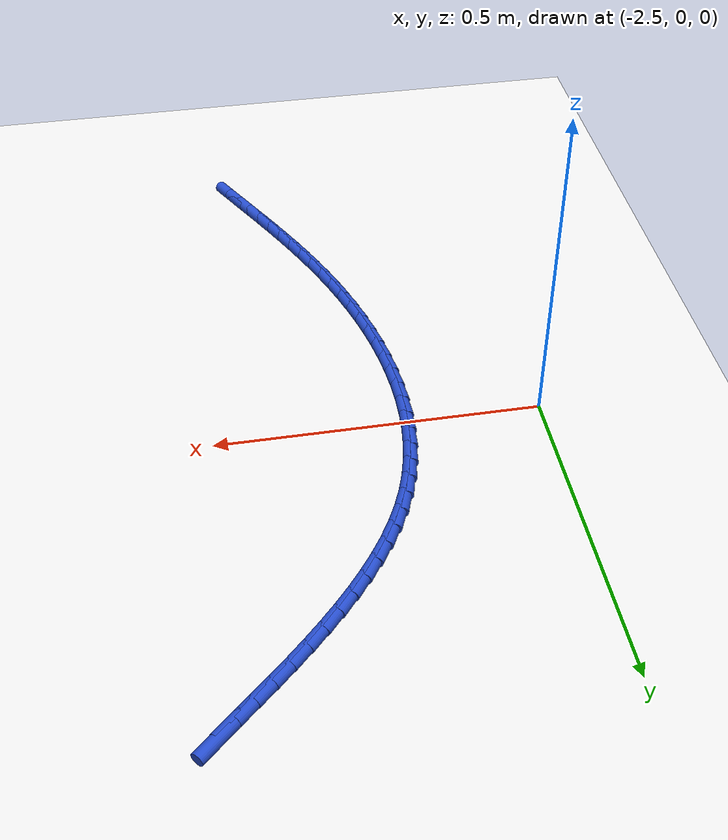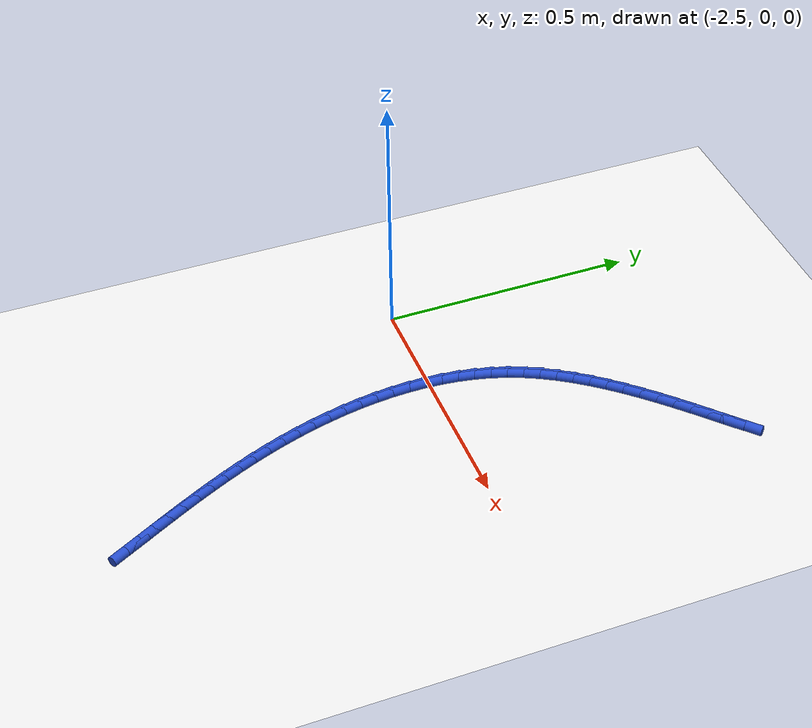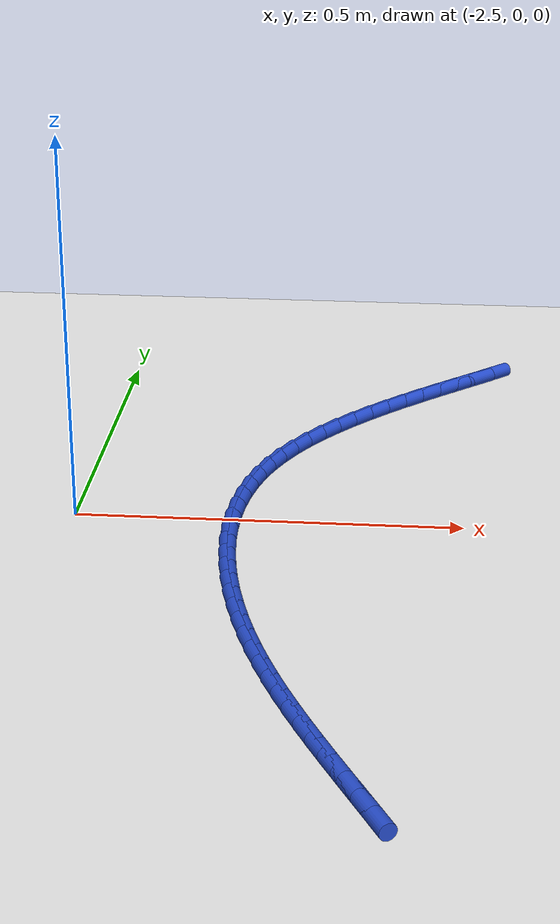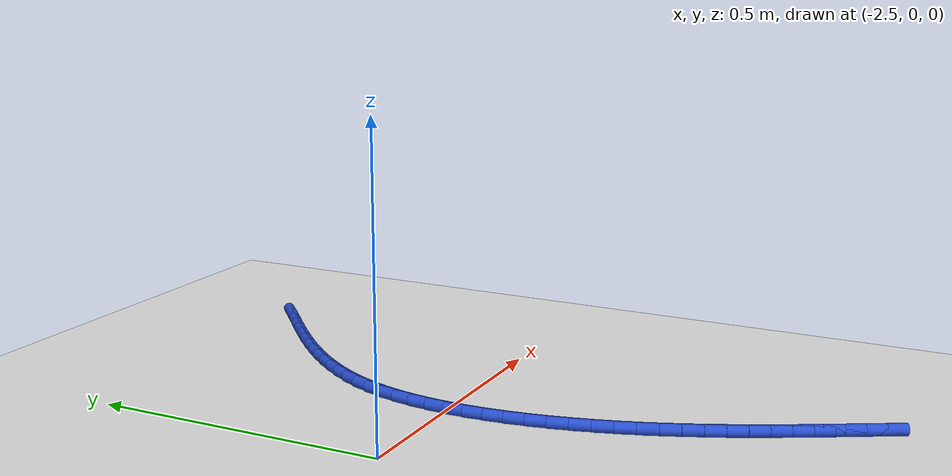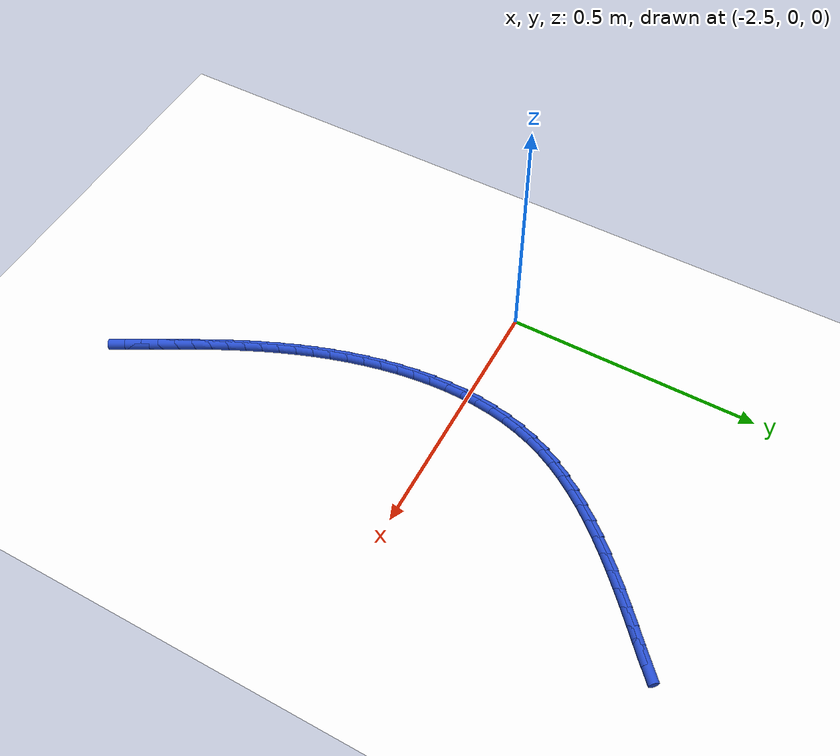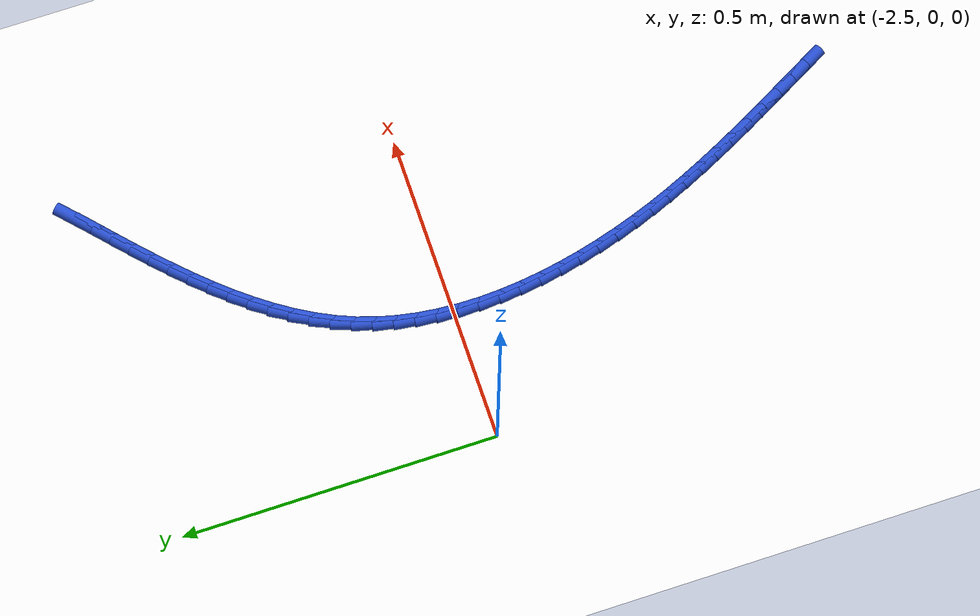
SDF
<sdf version="1.6">
 <world name="default">
  <model name="ground_plane">
   <static>1</static>
   <link name="link">
    <collision name="collision">
     <geometry><plane><normal>0 0 1</normal><size>100 100</size></plane></geometry>
     <surface><friction><ode><mu>100</mu><mu2>50</mu2></ode></friction></surface>
    </collision>
    <visual name="visual">
     <cast_shadows>0</cast_shadows>
     <geometry><plane><normal>0 0 1</normal><size>100 100</size></plane></geometry>
     <material>
      <script><uri>file://media/materials/scripts/gazebo.material</uri><name>Gazebo/WhiteGlow</name></script>
     </material>
    </visual>
   </link>
  </model>
  <model name="line">
   <link name="link_99">
    <pose>-1.9712170960711295 0.498593724339204 0.01 0 1.57 0.7433523687855094</pose>
    <collision name="collision">
     <geometry><cylinder><radius>0.01</radius><length>0.08</length></cylinder></geometry>
    </collision>
    <visual name="visual">
     <material>
      <script><name>Gazebo/Blue</name><uri>file://media/materials/scripts/gazebo.material</uri></script>
     </material>
     <geometry><cylinder><radius>0.01</radius><length>0.08</length></cylinder></geometry>
    </visual>
   </link>
   <link name="link_100">
    <pose>-1.9955050096753475 0.4762669194008407 0.01 0 1.57 0.7305749980280456</pose>
    <collision name="collision">
     <geometry><cylinder><radius>0.01</radius><length>0.08</length></cylinder></geometry>
    </collision>
    <visual name="visual">
     <material>
      <script><name>Gazebo/Blue</name><uri>file://media/materials/scripts/gazebo.material</uri></script>
     </material>
     <geometry><cylinder><radius>0.01</radius><length>0.08</length></cylinder></geometry>
    </visual>
   </link>
   <link name="link_101">
    <pose>-2.0203080441297785 0.4540445522976957 0.01 0 1.57 0.7376762493371514</pose>
    <collision name="collision">
     <geometry><cylinder><radius>0.01</radius><length>0.08</length></cylinder></geometry>
    </collision>
    <visual name="visual">
     <material>
      <script><name>Gazebo/Blue</name><uri>file://media/materials/scripts/gazebo.material</uri></script>
     </material>
     <geometry><cylinder><radius>0.01</radius><length>0.08</length></cylinder></geometry>
    </visual>
   </link>
   <link name="link_102">
    <pose>-2.0451204169456725 0.4314941396358713 0.01 0 1.57 0.7503446328507397</pose>
    <collision name="collision">
     <geometry><cylinder><radius>0.01</radius><length>0.08</length></cylinder></geometry>
    </collision>
    <visual name="visual">
     <material>
      <script><name>Gazebo/Blue</name><uri>file://media/materials/scripts/gazebo.material</uri></script>
     </material>
     <geometry><cylinder><radius>0.01</radius><length>0.08</length></cylinder></geometry>
    </visual>
   </link>
   <link name="link_103">
    <pose>-2.069734183310226 0.4085481923146449 0.01 0 1.57 0.7677650868058837</pose>
    <collision name="collision">
     <geometry><cylinder><radius>0.01</radius><length>0.08</length></cylinder></geometry>
    </collision>
    <visual name="visual">
     <material>
      <script><name>Gazebo/Blue</name><uri>file://media/materials/scripts/gazebo.material</uri></script>
     </material>
     <geometry><cylinder><radius>0.01</radius><length>0.08</length></cylinder></geometry>
    </visual>
   </link>
   <link name="link_104">
    <pose>-2.0939599961547426 0.3851620124078592 0.01 0 1.57 0.7900824711013407</pose>
    <collision name="collision">
     <geometry><cylinder><radius>0.01</radius><length>0.08</length></cylinder></geometry>
    </collision>
    <visual name="visual">
     <material>
      <script><name>Gazebo/Blue</name><uri>file://media/materials/scripts/gazebo.material</uri></script>
     </material>
     <geometry><cylinder><radius>0.01</radius><length>0.08</length></cylinder></geometry>
    </visual>
   </link>
   <link name="link_105">
    <pose>-2.1176085084105245 0.3612909019893579 0.01 0 1.57 0.8175104420003065</pose>
    <collision name="collision">
     <geometry><cylinder><radius>0.01</radius><length>0.08</length></cylinder></geometry>
    </collision>
    <visual name="visual">
     <material>
      <script><name>Gazebo/Blue</name><uri>file://media/materials/scripts/gazebo.material</uri></script>
     </material>
     <geometry><cylinder><radius>0.01</radius><length>0.08</length></cylinder></geometry>
    </visual>
   </link>
   <link name="link_106">
    <pose>-2.1404903730088765 0.3368901631329838 0.01 0 1.57 0.8503203261023627</pose>
    <collision name="collision">
     <geometry><cylinder><radius>0.01</radius><length>0.08</length></cylinder></geometry>
    </collision>
    <visual name="visual">
     <material>
      <script><name>Gazebo/Blue</name><uri>file://media/materials/scripts/gazebo.material</uri></script>
     </material>
     <geometry><cylinder><radius>0.01</radius><length>0.08</length></cylinder></geometry>
    </visual>
   </link>
   <link name="link_107">
    <pose>-2.1624162428811022 0.31191509791258026 0.01 0 1.57 0.8888251167248972</pose>
    <collision name="collision">
     <geometry><cylinder><radius>0.01</radius><length>0.08</length></cylinder></geometry>
    </collision>
    <visual name="visual">
     <material>
      <script><name>Gazebo/Blue</name><uri>file://media/materials/scripts/gazebo.material</uri></script>
     </material>
     <geometry><cylinder><radius>0.01</radius><length>0.08</length></cylinder></geometry>
    </visual>
   </link>
   <link name="link_108">
    <pose>-2.183196770958507 0.28632100840199015 0.01 0 1.57 0.9333555331846022</pose>
    <collision name="collision">
     <geometry><cylinder><radius>0.01</radius><length>0.08</length></cylinder></geometry>
    </collision>
    <visual name="visual">
     <material>
      <script><name>Gazebo/Blue</name><uri>file://media/materials/scripts/gazebo.material</uri></script>
     </material>
     <geometry><cylinder><radius>0.01</radius><length>0.08</length></cylinder></geometry>
    </visual>
   </link>
   <link name="link_109">
    <pose>-2.2026426101723913 0.260063196675057 0.01 0 1.57 0.984224685090006</pose>
    <collision name="collision">
     <geometry><cylinder><radius>0.01</radius><length>0.08</length></cylinder></geometry>
    </collision>
    <visual name="visual">
     <material>
      <script><name>Gazebo/Blue</name><uri>file://media/materials/scripts/gazebo.material</uri></script>
     </material>
     <geometry><cylinder><radius>0.01</radius><length>0.08</length></cylinder></geometry>
    </visual>
   </link>
   <link name="link_110">
    <pose>-2.220564413454061 0.2330969648056238 0.01 0 1.57 1.0416781597416251</pose>
    <collision name="collision">
     <geometry><cylinder><radius>0.01</radius><length>0.08</length></cylinder></geometry>
    </collision>
    <visual name="visual">
     <material>
      <script><name>Gazebo/Blue</name><uri>file://media/materials/scripts/gazebo.material</uri></script>
     </material>
     <geometry><cylinder><radius>0.01</radius><length>0.08</length></cylinder></geometry>
    </visual>
   </link>
   <link name="link_111">
    <pose>-2.2367728337348187 0.2053776148675336 0.01 0 1.57 1.1058280785248629</pose>
    <collision name="collision">
     <geometry><cylinder><radius>0.01</radius><length>0.08</length></cylinder></geometry>
    </collision>
    <visual name="visual">
     <material>
      <script><name>Gazebo/Blue</name><uri>file://media/materials/scripts/gazebo.material</uri></script>
     </material>
     <geometry><cylinder><radius>0.01</radius><length>0.08</length></cylinder></geometry>
    </visual>
   </link>
   <link name="link_112">
    <pose>-2.2510785239459685 0.17686044893462918 0.01 0 1.57 1.1765684320870826</pose>
    <collision name="collision">
     <geometry><cylinder><radius>0.01</radius><length>0.08</length></cylinder></geometry>
    </collision>
    <visual name="visual">
     <material>
      <script><name>Gazebo/Blue</name><uri>file://media/materials/scripts/gazebo.material</uri></script>
     </material>
     <geometry><cylinder><radius>0.01</radius><length>0.08</length></cylinder></geometry>
    </visual>
   </link>
   <link name="link_113">
    <pose>-2.263292289338381 0.14750084634135827 0.01 0 1.57 1.2510449465603104</pose>
    <collision name="collision">
     <geometry><cylinder><radius>0.01</radius><length>0.08</length></cylinder></geometry>
    </collision>
    <visual name="visual">
     <material>
      <script><name>Gazebo/Blue</name><uri>file://media/materials/scripts/gazebo.material</uri></script>
     </material>
     <geometry><cylinder><radius>0.01</radius><length>0.08</length></cylinder></geometry>
    </visual>
   </link>
   <link name="link_114">
    <pose>-2.273295513335017 0.11728998557972527 0.01 0 1.57 1.3224177623903886</pose>
    <collision name="collision">
     <geometry><cylinder><radius>0.01</radius><length>0.08</length></cylinder></geometry>
    </collision>
    <visual name="visual">
     <material>
      <script><name>Gazebo/Blue</name><uri>file://media/materials/scripts/gazebo.material</uri></script>
     </material>
     <geometry><cylinder><radius>0.01</radius><length>0.08</length></cylinder></geometry>
    </visual>
   </link>
   <link name="link_115">
    <pose>-2.281152104698836 0.08631162693029133 0.01 0 1.57 1.389446849622222</pose>
    <collision name="collision">
     <geometry><cylinder><radius>0.01</radius><length>0.08</length></cylinder></geometry>
    </collision>
    <visual name="visual">
     <material>
      <script><name>Gazebo/Blue</name><uri>file://media/materials/scripts/gazebo.material</uri></script>
     </material>
     <geometry><cylinder><radius>0.01</radius><length>0.08</length></cylinder></geometry>
    </visual>
   </link>
   <link name="link_116">
    <pose>-2.2869550865665262 0.05466429827132497 0.01 0 1.57 1.452093772004705</pose>
    <collision name="collision">
     <geometry><cylinder><radius>0.01</radius><length>0.08</length></cylinder></geometry>
    </collision>
    <visual name="visual">
     <material>
      <script><name>Gazebo/Blue</name><uri>file://media/materials/scripts/gazebo.material</uri></script>
     </material>
     <geometry><cylinder><radius>0.01</radius><length>0.08</length></cylinder></geometry>
    </visual>
   </link>
   <link name="link_117">
    <pose>-2.290797482074777 0.02244652748109369 0.01 0 1.57 1.5104581768428684</pose>
    <collision name="collision">
     <geometry><cylinder><radius>0.01</radius><length>0.08</length></cylinder></geometry>
    </collision>
    <visual name="visual">
     <material>
      <script><name>Gazebo/Blue</name><uri>file://media/materials/scripts/gazebo.material</uri></script>
     </material>
     <geometry><cylinder><radius>0.01</radius><length>0.08</length></cylinder></geometry>
    </visual>
   </link>
   <link name="link_118">
    <pose>-2.292772314360275 -0.010243157562134769 0.01 0 1.57 1.564738518466892</pose>
    <collision name="collision">
     <geometry><cylinder><radius>0.01</radius><length>0.08</length></cylinder></geometry>
    </collision>
    <visual name="visual">
     <material>
      <script><name>Gazebo/Blue</name><uri>file://media/materials/scripts/gazebo.material</uri></script>
     </material>
     <geometry><cylinder><radius>0.01</radius><length>0.08</length></cylinder></geometry>
    </visual>
   </link>
   <link name="link_119">
    <pose>-2.29297260655971 -0.04330622898009308 0.01 0 1.57 -1.526394913108153</pose>
    <collision name="collision">
     <geometry><cylinder><radius>0.01</radius><length>0.08</length></cylinder></geometry>
    </collision>
    <visual name="visual">
     <material>
      <script><name>Gazebo/Blue</name><uri>file://media/materials/scripts/gazebo.material</uri></script>
     </material>
     <geometry><cylinder><radius>0.01</radius><length>0.08</length></cylinder></geometry>
    </visual>
   </link>
   <link name="link_120">
    <pose>-2.2914913818097684 -0.0766441588945126 0.01 0 1.57 -1.479456790551005</pose>
    <collision name="collision">
     <geometry><cylinder><radius>0.01</radius><length>0.08</length></cylinder></geometry>
    </collision>
    <visual name="visual">
     <material>
      <script><name>Gazebo/Blue</name><uri>file://media/materials/scripts/gazebo.material</uri></script>
     </material>
     <geometry><cylinder><radius>0.01</radius><length>0.08</length></cylinder></geometry>
    </visual>
   </link>
   <link name="link_121">
    <pose>-2.2884216632471386 -0.11015841942712597 0.01 0 1.57 -1.4357229997104057</pose>
    <collision name="collision">
     <geometry><cylinder><radius>0.01</radius><length>0.08</length></cylinder></geometry>
    </collision>
    <visual name="visual">
     <material>
      <script><name>Gazebo/Blue</name><uri>file://media/materials/scripts/gazebo.material</uri></script>
     </material>
     <geometry><cylinder><radius>0.01</radius><length>0.08</length></cylinder></geometry>
    </visual>
   </link>
   <link name="link_122">
    <pose>-2.283856474008508 -0.14375048269966534 0.01 0 1.57 -1.3948740583595893</pose>
    <collision name="collision">
     <geometry><cylinder><radius>0.01</radius><length>0.08</length></cylinder></geometry>
    </collision>
    <visual name="visual">
     <material>
      <script><name>Gazebo/Blue</name><uri>file://media/materials/scripts/gazebo.material</uri></script>
     </material>
     <geometry><cylinder><radius>0.01</radius><length>0.08</length></cylinder></geometry>
    </visual>
   </link>
   <link name="link_123">
    <pose>-2.277888837230567 -0.17732182083386305 0.01 0 1.57 -1.3565966709175556</pose>
    <collision name="collision">
     <geometry><cylinder><radius>0.01</radius><length>0.08</length></cylinder></geometry>
    </collision>
    <visual name="visual">
     <material>
      <script><name>Gazebo/Blue</name><uri>file://media/materials/scripts/gazebo.material</uri></script>
     </material>
     <geometry><cylinder><radius>0.01</radius><length>0.08</length></cylinder></geometry>
    </visual>
   </link>
   <link name="link_124">
    <pose>-2.2706117760500018 -0.2107739059514513 0.01 0 1.57 -1.320588679218133</pose>
    <collision name="collision">
     <geometry><cylinder><radius>0.01</radius><length>0.08</length></cylinder></geometry>
    </collision>
    <visual name="visual">
     <material>
      <script><name>Gazebo/Blue</name><uri>file://media/materials/scripts/gazebo.material</uri></script>
     </material>
     <geometry><cylinder><radius>0.01</radius><length>0.08</length></cylinder></geometry>
    </visual>
   </link>
   <link name="link_125">
    <pose>-2.2621183136035006 -0.2440082101741631 0.01 0 1.57 -1.286561084157032</pose>
    <collision name="collision">
     <geometry><cylinder><radius>0.01</radius><length>0.08</length></cylinder></geometry>
    </collision>
    <visual name="visual">
     <material>
      <script><name>Gazebo/Blue</name><uri>file://media/materials/scripts/gazebo.material</uri></script>
     </material>
     <geometry><cylinder><radius>0.01</radius><length>0.08</length></cylinder></geometry>
    </visual>
   </link>
   <link name="link_126">
    <pose>-2.2525014730277517 -0.27692620562372894 0.01 0 1.57 -1.254237935180598</pose>
    <collision name="collision">
     <geometry><cylinder><radius>0.01</radius><length>0.08</length></cylinder></geometry>
    </collision>
    <visual name="visual">
     <material>
      <script><name>Gazebo/Blue</name><uri>file://media/materials/scripts/gazebo.material</uri></script>
     </material>
     <geometry><cylinder><radius>0.01</radius><length>0.08</length></cylinder></geometry>
    </visual>
   </link>
   <link name="link_127">
    <pose>-2.241854277459443 -0.309429364421882 0.01 0 1.57 -1.2233696527693905</pose>
    <collision name="collision">
     <geometry><cylinder><radius>0.01</radius><length>0.08</length></cylinder></geometry>
    </collision>
    <visual name="visual">
     <material>
      <script><name>Gazebo/Blue</name><uri>file://media/materials/scripts/gazebo.material</uri></script>
     </material>
     <geometry><cylinder><radius>0.01</radius><length>0.08</length></cylinder></geometry>
    </visual>
   </link>
   <link name="link_128">
    <pose>-2.230269832591724 -0.3414204291687358 0.01 0 1.57 -1.1944120074125684</pose>
    <collision name="collision">
     <geometry><cylinder><radius>0.01</radius><length>0.08</length></cylinder></geometry>
    </collision>
    <visual name="visual">
     <material>
      <script><name>Gazebo/Blue</name><uri>file://media/materials/scripts/gazebo.material</uri></script>
     </material>
     <geometry><cylinder><radius>0.01</radius><length>0.08</length></cylinder></geometry>
    </visual>
   </link>
   <link name="link_129">
    <pose>-2.217844874532303 -0.3728580116615057 0.01 0 1.57 -1.1682939314446188</pose>
    <collision name="collision">
     <geometry><cylinder><radius>0.01</radius><length>0.08</length></cylinder></geometry>
    </collision>
    <visual name="visual">
     <material>
      <script><name>Gazebo/Blue</name><uri>file://media/materials/scripts/gazebo.material</uri></script>
     </material>
     <geometry><cylinder><radius>0.01</radius><length>0.08</length></cylinder></geometry>
    </visual>
   </link>
   <link name="link_130">
    <pose>-2.204681114575773 -0.40377728787270617 0.01 0 1.57 -1.1451667660521245</pose>
    <collision name="collision">
     <geometry><cylinder><radius>0.01</radius><length>0.08</length></cylinder></geometry>
    </collision>
    <visual name="visual">
     <material>
      <script><name>Gazebo/Blue</name><uri>file://media/materials/scripts/gazebo.material</uri></script>
     </material>
     <geometry><cylinder><radius>0.01</radius><length>0.08</length></cylinder></geometry>
    </visual>
   </link>
   <link name="link_131">
    <pose>-2.190880623927546 -0.4342189725165499 0.01 0 1.57 -1.1250970454972327</pose>
    <collision name="collision">
     <geometry><cylinder><radius>0.01</radius><length>0.08</length></cylinder></geometry>
    </collision>
    <visual name="visual">
     <material>
      <script><name>Gazebo/Blue</name><uri>file://media/materials/scripts/gazebo.material</uri></script>
     </material>
     <geometry><cylinder><radius>0.01</radius><length>0.08</length></cylinder></geometry>
    </visual>
   </link>
   <link name="link_132">
    <pose>-2.1765454737930336 -0.46422378030725003 0.01 0 1.57 -1.1081376853922564</pose>
    <collision name="collision">
     <geometry><cylinder><radius>0.01</radius><length>0.08</length></cylinder></geometry>
    </collision>
    <visual name="visual">
     <material>
      <script><name>Gazebo/Blue</name><uri>file://media/materials/scripts/gazebo.material</uri></script>
     </material>
     <geometry><cylinder><radius>0.01</radius><length>0.08</length></cylinder></geometry>
    </visual>
   </link>
   <link name="link_133">
    <pose>-2.161777735377648 -0.4938324259590172 0.01 0 1.57 -1.0943334800479956</pose>
    <collision name="collision">
     <geometry><cylinder><radius>0.01</radius><length>0.08</length></cylinder></geometry>
    </collision>
    <visual name="visual">
     <material>
      <script><name>Gazebo/Blue</name><uri>file://media/materials/scripts/gazebo.material</uri></script>
     </material>
     <geometry><cylinder><radius>0.01</radius><length>0.08</length></cylinder></geometry>
    </visual>
   </link>
   <link name="link_134">
    <pose>-2.1466794798868025 -0.523085624186065 0.01 0 1.57 -1.0837260607355863</pose>
    <collision name="collision">
     <geometry><cylinder><radius>0.01</radius><length>0.08</length></cylinder></geometry>
    </collision>
    <visual name="visual">
     <material>
      <script><name>Gazebo/Blue</name><uri>file://media/materials/scripts/gazebo.material</uri></script>
     </material>
     <geometry><cylinder><radius>0.01</radius><length>0.08</length></cylinder></geometry>
    </visual>
   </link>
   <link name="link_135">
    <pose>-2.131352778525908 -0.5520240897026054 0.01 0 1.57 -1.0763581795357413</pose>
    <collision name="collision">
     <geometry><cylinder><radius>0.01</radius><length>0.08</length></cylinder></geometry>
    </collision>
    <visual name="visual">
     <material>
      <script><name>Gazebo/Blue</name><uri>file://media/materials/scripts/gazebo.material</uri></script>
     </material>
     <geometry><cylinder><radius>0.01</radius><length>0.08</length></cylinder></geometry>
    </visual>
   </link>
   <link name="link_136">
    <pose>-2.115899702500378 -0.5806885372228515 0.01 0 1.57 -1.072277231691672</pose>
    <collision name="collision">
     <geometry><cylinder><radius>0.01</radius><length>0.08</length></cylinder></geometry>
    </collision>
    <visual name="visual">
     <material>
      <script><name>Gazebo/Blue</name><uri>file://media/materials/scripts/gazebo.material</uri></script>
     </material>
     <geometry><cylinder><radius>0.01</radius><length>0.08</length></cylinder></geometry>
    </visual>
   </link>
   <link name="link_137">
    <pose>-2.100422323015623 -0.609119681461015 0.01 0 1.57 -1.0715379499610131</pose>
    <collision name="collision">
     <geometry><cylinder><radius>0.01</radius><length>0.08</length></cylinder></geometry>
    </collision>
    <visual name="visual">
     <material>
      <script><name>Gazebo/Blue</name><uri>file://media/materials/scripts/gazebo.material</uri></script>
     </material>
     <geometry><cylinder><radius>0.01</radius><length>0.08</length></cylinder></geometry>
    </visual>
   </link>
   <link name="link_138">
    <pose>-2.0850227112770563 -0.637358237131309 0.01 0 1.57 -1.0742041996851406</pose>
    <collision name="collision">
     <geometry><cylinder><radius>0.01</radius><length>0.08</length></cylinder></geometry>
    </collision>
    <visual name="visual">
     <material>
      <script><name>Gazebo/Blue</name><uri>file://media/materials/scripts/gazebo.material</uri></script>
     </material>
     <geometry><cylinder><radius>0.01</radius><length>0.08</length></cylinder></geometry>
    </visual>
   </link>
  </model>
 </world>
</sdf>
